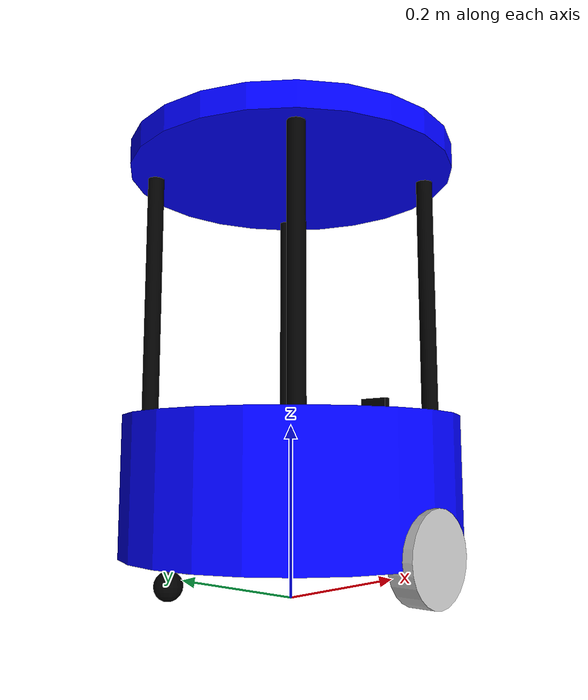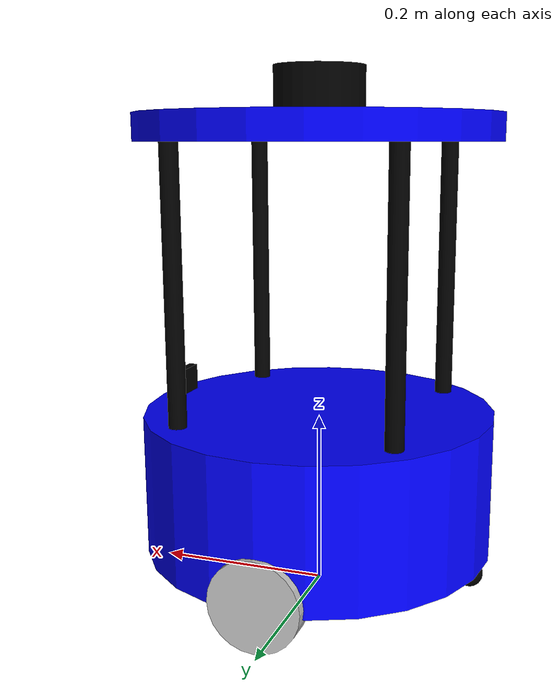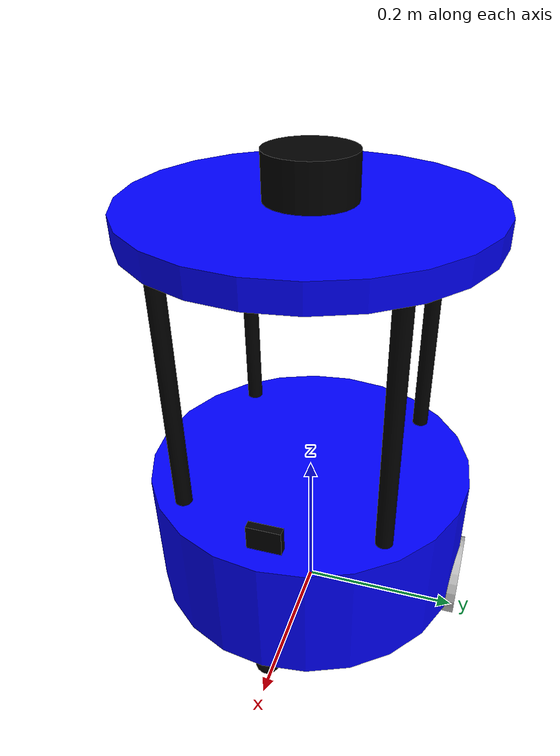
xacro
<?xml version="1.0"?>
<robot name="my_robot_2f_camera" xmlns:xacro="http://www.ros.org/wiki/xacro">

    <xacro:include filename="$(find self_designed_robot)/urdf/xacro/my_robot_2f.xacro" />
    <xacro:include filename="$(find self_designed_robot)/urdf/xacro/camera.xacro" />
    <xacro:include filename="$(find self_designed_robot)/urdf/xacro/laser.xacro" />

    <my_robot_base/>

    <xacro:property name="camera_offset_x" value="0.17" />
    <xacro:property name="camera_offset_y" value="0.0" />
    <xacro:property name="camera_offset_z" value="0.1" />
    <joint name="camera_joint" type="fixed">
        <origin xyz="${camera_offset_x} ${camera_offset_y} ${camera_offset_z}" rpy="0 0 0" />
        <parent link="base_link" />
        <child link="camera_link" />
    </joint>

    <xacro:use_camera prefix="camera" />

    <xacro:property name="laser_offset_x" value="0.0" />
    <xacro:property name="laser_offser_y" value="0.0" />
    <xacro:property name="laser_offset_z" value="0.04" />

    <joint name="laser_joint" type="fixed">
        <origin xyz="${laser_offset_x} ${laser_offser_y} ${laser_offset_z}" rpy="0 0 0" />
        <parent link="base_link_l2" />
        <child link="laser_link" />
    </joint>

    <xacro:use_laser prefix="laser" />

</robot>

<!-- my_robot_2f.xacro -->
<robot name="my_robot" xmlns:xacro="http://www.ros.org/wiki/xacro">

    <xacro:property name="M_PI" value="3.1415926" />

    <xacro:property name="base_length" value="0.16" />
    <xacro:property name="base_radius" value="0.20" />

    <xacro:property name="wheel_length" value="0.03" />
    <xacro:property name="wheel_radius" value="0.05" />
    <xacro:property name="wheel_joint_y" value="0.19" />
    <xacro:property name="wheel_joint_z" value="0.07" />

    <xacro:property name="caster_joint_x" value="0.18" />
    <xacro:property name="caster_radius" value="0.015" />
    <xacro:property name="caster_box_size" value="0.01" />

    <xacro:property name="trestle_length" value="0.3" />
    <xacro:property name="trestle_radius" value="0.01" />
    <xacro:property name="trestle_joint_x" value="0.12" />
    <xacro:property name="trestle_joint_y" value="0.12" />

    <xacro:property name="base_l2_length" value="0.03" />
    <xacro:property name="base_l2_radius" value="0.20" />
    <xacro:property name="trestle_l2_joint_x" value="0.12" />
    <xacro:property name="trestle_l2_joint_y" value="0.12" />

    <material name="yellow">
        <color rgba="1 0.4 0 1" />
    </material>
    <material name="black">
        <color rgba="0 0 0 0.95" />
    </material>
    <material name="blue">
        <color rgba="0 0 1 1" />
    </material>
    <material name="gray">
        <color rgba="0.75 0.75 0.75 0.95" />
    </material>

    <xacro:macro name="wheel" params="prefix reflect">
        <joint name="${prefix}_wheel_joint" type="continuous">
            <origin xyz="0 ${reflect*wheel_joint_y} ${-wheel_joint_z}" rpy="0 0 0"/>
            <parent link="base_link" />
            <child link="${prefix}_wheel_link" />
            <axis xyz="0 1 0" />
        </joint>
        <link name="${prefix}_wheel_link">
            <visual>
                <origin xyz="0 0 0" rpy="${M_PI/2} 0 0" />
                <geometry>
                    <cylinder length="${wheel_length}" radius="${wheel_radius}" />
                </geometry>
                <material name="gray" />
            </visual>
        </link>
    </xacro:macro>

    <xacro:macro name="caster" params="prefix reflect">
        <joint name="${prefix}_caster_box_base_joint" type="fixed">
            <origin xyz="${reflect*caster_joint_x} 0 ${-(caster_box_size/2 + base_length/2)}" rpy="0 0 0" />
            <parent link="base_link" />
            <child link="${prefix}_caster_box" />
        </joint>
        <link name="${prefix}_caster_box">
            <visual>
                <origin xyz="0 0 0" rpy="0 0 0" />
                <geometry>
                    <box size="${caster_box_size} ${caster_box_size} ${caster_box_size}" rpy="0 0 0" />
                </geometry>
                <material name="black" />
            </visual>
        </link>
        <joint name="${prefix}_caster_joint" type="continuous">
            <origin xyz="0 0 ${-(caster_box_size/2 + caster_radius/2)}" rpy="0 0 0" />
            <parent link="${prefix}_caster_box" />
            <child link="${prefix}_caster_link" />
            <axis xyz="0 1 0" />
        </joint>
        <link name="${prefix}_caster_link">
            <visual>
                <origin xyz="0 0 0" rpy="0 0 0" />
                <geometry>
                    <sphere radius="${caster_radius}" />
                </geometry>
                <material name="black" />
            </visual>
        </link>
    </xacro:macro>

    <xacro:macro name="trestle" params="prefix reflect_x reflect_y">
        <joint name="${prefix}_trestle_joint" type="fixed">
            <origin xyz="${reflect_x*trestle_joint_x} ${reflect_y*trestle_joint_y} ${base_length/2+trestle_length/2}" rpy="0 0 0" />
            <parent link="base_link" />
            <child link="${prefix}_trestle_link" />
        </joint>
        <link name="${prefix}_trestle_link">
            <visual>
                <origin xyz="0 0 0" rpy="0 0 0" />
                <geometry>
                    <cylinder length="${trestle_length}" radius="${trestle_radius}" />
                </geometry>
                <material name="black" />
            </visual>
        </link>
    </xacro:macro>

    <xacro:macro name="my_robot_base">
        <link name="base_footprint">
            <visual>
                <origin xyz="0 0 0" rpy="0 0 0" />
                <geometry>
                    <box size="0.001 0.001 0.001" />
                </geometry>
            </visual>
        </link>
        <joint name="base_footprint" type="fixed">
            <origin xyz="0 0 ${caster_box_size*2 + caster_radius*2 + base_length/2}" rpy="0 0 0" />
            <parent link="base_footprint" />
            <child link="base_link" />
        </joint>
        <link name="base_link">
            <visual>
                <origin xyz="0 0 0" rpy="0 0 0" />
                <geometry>
                    <cylinder length="${base_length}" radius="${base_radius}" />
                </geometry>
                <material name="blue"/>
            </visual>
        </link>

        <wheel prefix="left" reflect="1" />
        <wheel prefix="right" reflect="-1" />

        <caster prefix="front" reflect="1" />
        <caster prefix="back" reflect="-1" />

        <trestle prefix="left_front" reflect_x="1" reflect_y="1" />
        <trestle prefix="right_front" reflect_x="1" reflect_y="-1" />
        <trestle prefix="left_back" reflect_x="-1" reflect_y="1" />
        <trestle prefix="right_back" reflect_x="-1" reflect_y="-1" />

        <joint name="left_front_l2_joint" type="fixed">
            <origin xyz="${-trestle_l2_joint_x} ${-trestle_l2_joint_y} ${trestle_length/2 + base_l2_length/2}" rpy="0 0 0" />
            <parent link="left_front_trestle_link" />
            <child link="base_link_l2" />
        </joint>
        <link name="base_link_l2">
            <visual>
                <origin xyz="0 0 0" rpy="0 0 0" />
                <geometry>
                    <cylinder length="${base_l2_length}" radius="${base_l2_radius}" />
                </geometry>
                <material name="blue" />
            </visual>
        </link>

    </xacro:macro>
</robot>

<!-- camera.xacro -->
<robot xmlns:xacro="http://www.ros.org/wiki/xacro" name="camera">

    <xacro:property name="camera_length" value="0.01" />
    <xacro:property name="camera_width" value="0.04" />
    <xacro:property name="camera_height" value="0.03" />

    <xacro:macro name="use_camera" params="prefix:=camera">
        <link name="${prefix}_link">
            <visual>
                <origin xyz="0 0 0" rpy="0 0 0" />
                <geometry>
                    <box size="${camera_length} ${camera_width} ${camera_height}" />
                </geometry>
                <material name="black">
                    <color rgba="0 0 0 1" />
                </material>
            </visual>
        </link>
    </xacro:macro>

</robot>

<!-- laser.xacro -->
<robot name="my_robot" xmlns:xacro="http://www.ros.org/wiki/xacro">

    <xacro:property name="laser_radius" value="0.05" />
    <xacro:property name="laser_length" value="0.05" />

    <xacro:macro name="use_laser" params="prefix:=laser">
        <link name="${prefix}_link">
            <visual>
                <origin xyz="0 0 0" rpy="0 0 0" />
                <geometry>
                    <cylinder length="${laser_length}" radius="${laser_radius}" />
                </geometry>
                <material name="black">
                    <color rgba="0 0 0 0.95" />
                </material>
            </visual>
        </link>
    </xacro:macro>
</robot>
